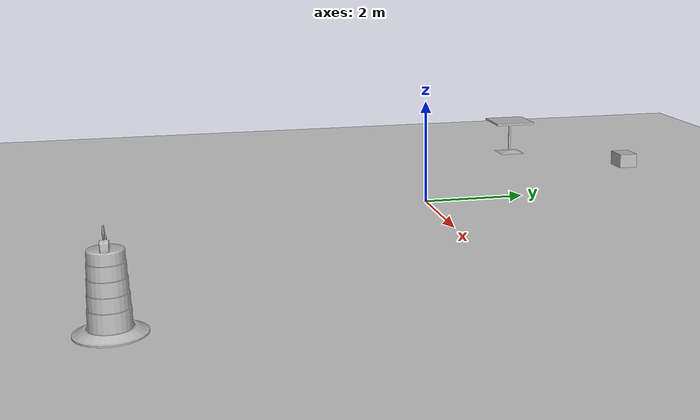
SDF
<sdf version="1.6">
 <world name="default">
  <light name="sun" type="directional">
   <pose>0 0 10 0 -0 0</pose>
   <diffuse>0.8 0.8 0.8 1</diffuse>
   <specular>0.2 0.2 0.2 1</specular>
   <attenuation>
    <range>1000</range>
    <constant>0.9</constant>
    <linear>0.01</linear>
    <quadratic>0.001</quadratic>
   </attenuation>
   <direction>-0.5 0.1 -0.9</direction>
  </light>
  <model name="ground_plane">
   <static>1</static>
   <link name="link">
    <collision name="collision">
     <geometry><plane><normal>0 0 1</normal><size>100 100</size></plane></geometry>
     <surface><friction><ode><mu>50</mu><mu2>25</mu2></ode></friction></surface>
    </collision>
    <visual name="visual">
     <cast_shadows>0</cast_shadows>
     <geometry><plane><normal>0 0 1</normal><size>100 100</size></plane></geometry>
     <material>
      <script><uri>file://media/materials/scripts/gazebo.material</uri><name>Gazebo/Grey</name></script>
     </material>
    </visual>
    <velocity_decay><linear>0</linear><angular>0</angular></velocity_decay>
   </link>
  </model>
  <physics type="ode">
   <max_step_size>0.01</max_step_size>
   <real_time_factor>1</real_time_factor>
   <real_time_update_rate>100</real_time_update_rate>
   <gravity>0 0 -9.8</gravity>
  </physics>
  <scene><ambient>0.4 0.4 0.4 1</ambient><background>0.7 0.7 0.7 1</background><shadows>1</shadows></scene>
  <model name="cafe_table">
   <static>1</static>
   <link name="link">
    <collision name="surface">
     <pose>0 0 0.755 0 -0 0</pose>
     <geometry><box><size>0.913 0.913 0.04</size></box></geometry>
    </collision>
    <collision name="column">
     <pose>0 0 0.37 0 -0 0</pose>
     <geometry><box><size>0.042 0.042 0.74</size></box></geometry>
    </collision>
    <collision name="base">
     <pose>0 0 0.02 0 -0 0</pose>
     <geometry><box><size>0.56 0.56 0.04</size></box></geometry>
    </collision>
    <visual name="visual">
     <geometry><mesh><uri>model://cafe_table/meshes/cafe_table.dae</uri></mesh></geometry>
    </visual>
   </link>
   <pose>-4.25707 3.20822 0 0 -0 0</pose>
  </model>
  <model name="cardboard_box">
   <pose>-2.15179 5.24514 0.149 0 -0 0</pose>
   <link name="link">
    <inertial>
     <mass>2</mass>
     <inertia>
      <ixx>0.0416667</ixx>
      <ixy>0</ixy>
      <ixz>0</ixz>
      <iyy>0.0566667</iyy>
      <iyz>0</iyz>
      <izz>0.0683333</izz>
     </inertia>
    </inertial>
    <collision name="collision">
     <geometry><box><size>0.5 0.4 0.3</size></box></geometry>
     <surface>
      <friction><ode><mu>1</mu><mu2>1</mu2></ode></friction>
      <contact><ode><kp>1e+07</kp><kd>1</kd><min_depth>0.001</min_depth><max_vel>0.1</max_vel></ode></contact>
     </surface>
    </collision>
    <visual name="visual">
     <pose>0 0 -0.15 0 -0 0</pose>
     <geometry>
      <mesh><uri>model://cardboard_box/meshes/cardboard_box.dae</uri><scale>1.25932 1.00745 0.755591</scale></mesh>
     </geometry>
    </visual>
   </link>
  </model>
  <model name="Construction Barrel">
   <link name="link">
    <inertial>
     <pose>0 0 0.4 0 -0 0</pose>
     <mass>500</mass>
     <inertia><ixx>51.2096</ixx><iyy>51.2096</iyy><izz>25</izz><ixy>0</ixy><ixz>0</ixz><iyz>0</iyz></inertia>
    </inertial>
    <collision name="collision">
     <geometry><mesh><uri>model://construction_barrel/meshes/construction_barrel.dae</uri></mesh></geometry>
    </collision>
    <visual name="visual">
     <geometry><mesh><uri>model://construction_barrel/meshes/construction_barrel.dae</uri></mesh></geometry>
    </visual>
   </link>
   <pose>5.91485 -5.91599 0 0 0 -7e-06</pose>
  </model>
 </world>
</sdf>
